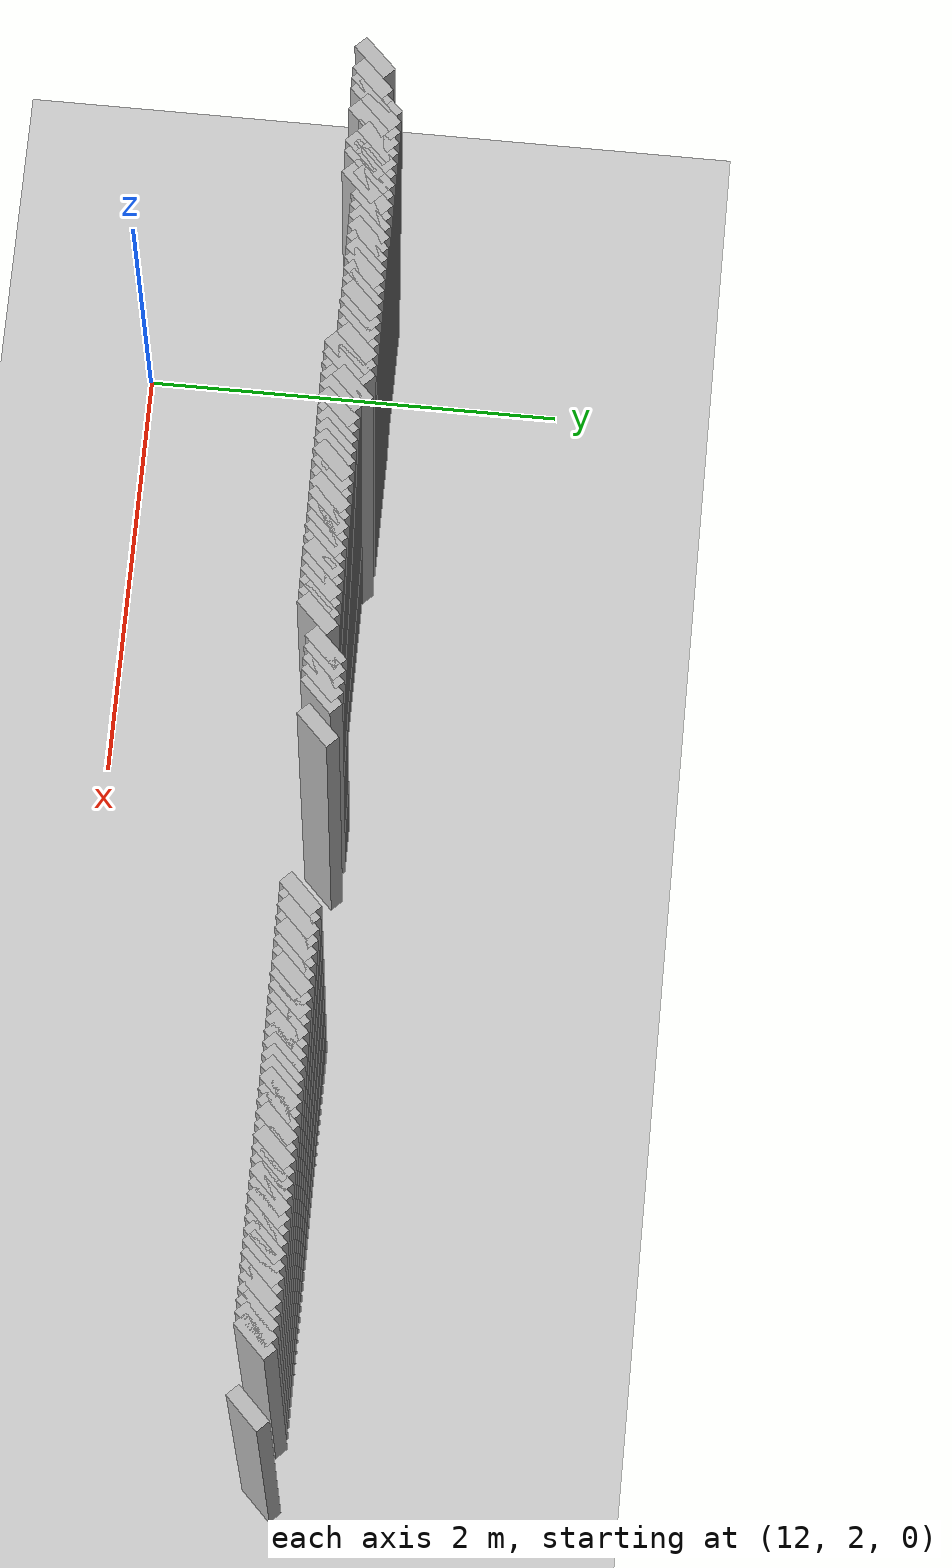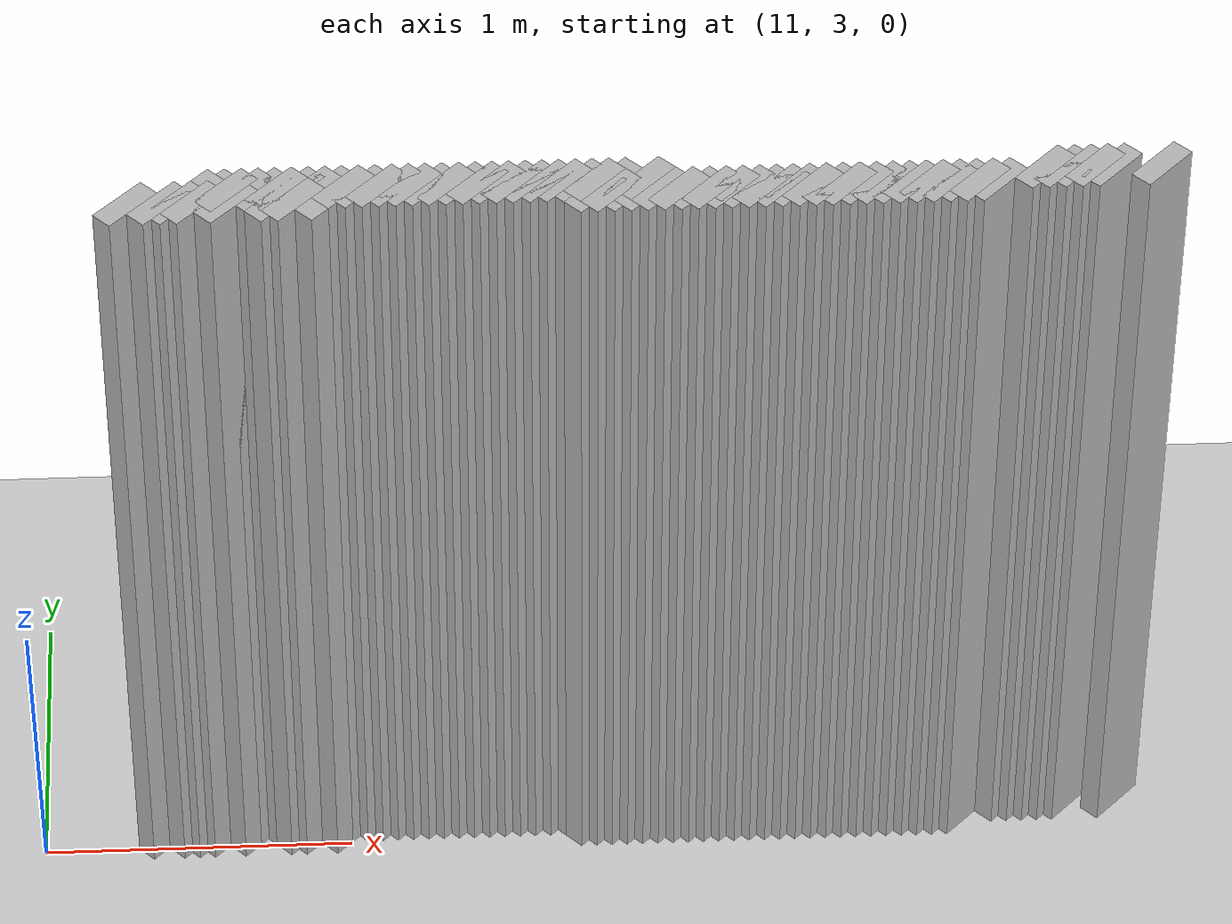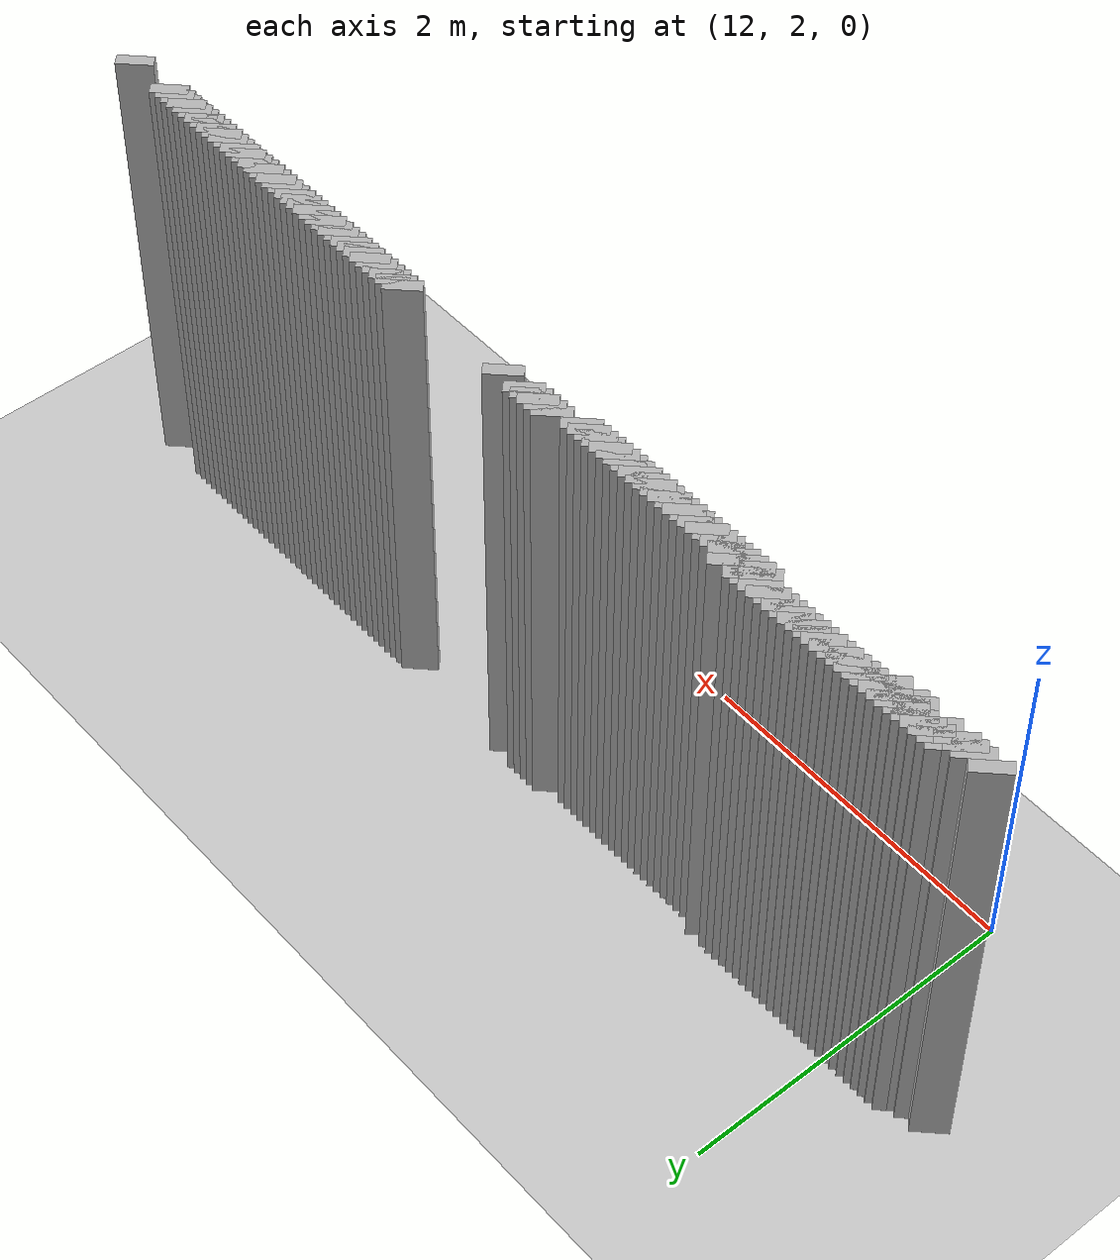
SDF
<sdf version="1.5">
 <world name="default">
  <include><uri>model://ground_plane</uri></include>
  <include><uri>model://sun</uri></include>
  <model name="grey_wall_3712">
   <static>1</static>
   <link name="link">
    <pose>11.600000000000001 3.1  1.4 0 0 -0.7853981633974394</pose>
    <collision name="collision">
     <geometry><box><size>0.07071067811865513 .2  2.8</size></box></geometry>
    </collision>
    <visual name="visual">
     <cast_shadows>0</cast_shadows>
     <geometry><box><size>0.07071067811865513 .2  2.8</size></box></geometry>
    </visual>
   </link>
  </model>
  <model name="grey_wall_3713">
   <static>1</static>
   <link name="link">
    <pose>11.65 3.1  1.4 0 0 -0.7853981633974394</pose>
    <collision name="collision">
     <geometry><box><size>0.07071067811865513 .2  2.8</size></box></geometry>
    </collision>
    <visual name="visual">
     <cast_shadows>0</cast_shadows>
     <geometry><box><size>0.07071067811865513 .2  2.8</size></box></geometry>
    </visual>
   </link>
  </model>
  <model name="grey_wall_3714">
   <static>1</static>
   <link name="link">
    <pose>11.700000000000001 3.1  1.4 0 0 -0.7853981633974394</pose>
    <collision name="collision">
     <geometry><box><size>0.07071067811865513 .2  2.8</size></box></geometry>
    </collision>
    <visual name="visual">
     <cast_shadows>0</cast_shadows>
     <geometry><box><size>0.07071067811865513 .2  2.8</size></box></geometry>
    </visual>
   </link>
  </model>
  <model name="grey_wall_3715">
   <static>1</static>
   <link name="link">
    <pose>11.75 3.1  1.4 0 0 -0.7853981633974394</pose>
    <collision name="collision">
     <geometry><box><size>0.07071067811865513 .2  2.8</size></box></geometry>
    </collision>
    <visual name="visual">
     <cast_shadows>0</cast_shadows>
     <geometry><box><size>0.07071067811865513 .2  2.8</size></box></geometry>
    </visual>
   </link>
  </model>
  <model name="grey_wall_3716">
   <static>1</static>
   <link name="link">
    <pose>11.8 3.1  1.4 0 0 -0.7853981633974394</pose>
    <collision name="collision">
     <geometry><box><size>0.07071067811865513 .2  2.8</size></box></geometry>
    </collision>
    <visual name="visual">
     <cast_shadows>0</cast_shadows>
     <geometry><box><size>0.07071067811865513 .2  2.8</size></box></geometry>
    </visual>
   </link>
  </model>
  <model name="grey_wall_3717">
   <static>1</static>
   <link name="link">
    <pose>11.850000000000001 3.1  1.4 0 0 -0.7853981633974394</pose>
    <collision name="collision">
     <geometry><box><size>0.07071067811865513 .2  2.8</size></box></geometry>
    </collision>
    <visual name="visual">
     <cast_shadows>0</cast_shadows>
     <geometry><box><size>0.07071067811865513 .2  2.8</size></box></geometry>
    </visual>
   </link>
  </model>
  <model name="grey_wall_3718">
   <static>1</static>
   <link name="link">
    <pose>11.9 3.1  1.4 0 0 -0.7853981633974394</pose>
    <collision name="collision">
     <geometry><box><size>0.07071067811865513 .2  2.8</size></box></geometry>
    </collision>
    <visual name="visual">
     <cast_shadows>0</cast_shadows>
     <geometry><box><size>0.07071067811865513 .2  2.8</size></box></geometry>
    </visual>
   </link>
  </model>
  <model name="grey_wall_3719">
   <static>1</static>
   <link name="link">
    <pose>11.950000000000001 3.1  1.4 0 0 -0.7853981633974394</pose>
    <collision name="collision">
     <geometry><box><size>0.07071067811865513 .2  2.8</size></box></geometry>
    </collision>
    <visual name="visual">
     <cast_shadows>0</cast_shadows>
     <geometry><box><size>0.07071067811865513 .2  2.8</size></box></geometry>
    </visual>
   </link>
  </model>
  <model name="grey_wall_3720">
   <static>1</static>
   <link name="link">
    <pose>12.0 3.1  1.4 0 0 -0.7853981633974394</pose>
    <collision name="collision">
     <geometry><box><size>0.07071067811865513 .2  2.8</size></box></geometry>
    </collision>
    <visual name="visual">
     <cast_shadows>0</cast_shadows>
     <geometry><box><size>0.07071067811865513 .2  2.8</size></box></geometry>
    </visual>
   </link>
  </model>
  <model name="grey_wall_3721">
   <static>1</static>
   <link name="link">
    <pose>12.05 3.1  1.4 0 0 -0.7853981633974394</pose>
    <collision name="collision">
     <geometry><box><size>0.07071067811865513 .2  2.8</size></box></geometry>
    </collision>
    <visual name="visual">
     <cast_shadows>0</cast_shadows>
     <geometry><box><size>0.07071067811865513 .2  2.8</size></box></geometry>
    </visual>
   </link>
  </model>
  <model name="grey_wall_3722">
   <static>1</static>
   <link name="link">
    <pose>12.100000000000001 3.1  1.4 0 0 -0.7853981633974394</pose>
    <collision name="collision">
     <geometry><box><size>0.07071067811865513 .2  2.8</size></box></geometry>
    </collision>
    <visual name="visual">
     <cast_shadows>0</cast_shadows>
     <geometry><box><size>0.07071067811865513 .2  2.8</size></box></geometry>
    </visual>
   </link>
  </model>
  <model name="grey_wall_3723">
   <static>1</static>
   <link name="link">
    <pose>12.15 3.1  1.4 0 0 -0.7853981633974394</pose>
    <collision name="collision">
     <geometry><box><size>0.07071067811865513 .2  2.8</size></box></geometry>
    </collision>
    <visual name="visual">
     <cast_shadows>0</cast_shadows>
     <geometry><box><size>0.07071067811865513 .2  2.8</size></box></geometry>
    </visual>
   </link>
  </model>
  <model name="grey_wall_3724">
   <static>1</static>
   <link name="link">
    <pose>12.200000000000001 3.1  1.4 0 0 -0.7853981633974394</pose>
    <collision name="collision">
     <geometry><box><size>0.07071067811865513 .2  2.8</size></box></geometry>
    </collision>
    <visual name="visual">
     <cast_shadows>0</cast_shadows>
     <geometry><box><size>0.07071067811865513 .2  2.8</size></box></geometry>
    </visual>
   </link>
  </model>
  <model name="grey_wall_3725">
   <static>1</static>
   <link name="link">
    <pose>12.25 3.1  1.4 0 0 -0.7853981633974394</pose>
    <collision name="collision">
     <geometry><box><size>0.07071067811865513 .2  2.8</size></box></geometry>
    </collision>
    <visual name="visual">
     <cast_shadows>0</cast_shadows>
     <geometry><box><size>0.07071067811865513 .2  2.8</size></box></geometry>
    </visual>
   </link>
  </model>
  <model name="grey_wall_3726">
   <static>1</static>
   <link name="link">
    <pose>12.3 3.1  1.4 0 0 -0.7853981633974394</pose>
    <collision name="collision">
     <geometry><box><size>0.07071067811865513 .2  2.8</size></box></geometry>
    </collision>
    <visual name="visual">
     <cast_shadows>0</cast_shadows>
     <geometry><box><size>0.07071067811865513 .2  2.8</size></box></geometry>
    </visual>
   </link>
  </model>
  <model name="grey_wall_3727">
   <static>1</static>
   <link name="link">
    <pose>12.350000000000001 3.1  1.4 0 0 -0.7853981633974394</pose>
    <collision name="collision">
     <geometry><box><size>0.07071067811865513 .2  2.8</size></box></geometry>
    </collision>
    <visual name="visual">
     <cast_shadows>0</cast_shadows>
     <geometry><box><size>0.07071067811865513 .2  2.8</size></box></geometry>
    </visual>
   </link>
  </model>
  <model name="grey_wall_3728">
   <static>1</static>
   <link name="link">
    <pose>12.4 3.1  1.4 0 0 -0.7853981633974394</pose>
    <collision name="collision">
     <geometry><box><size>0.07071067811865513 .2  2.8</size></box></geometry>
    </collision>
    <visual name="visual">
     <cast_shadows>0</cast_shadows>
     <geometry><box><size>0.07071067811865513 .2  2.8</size></box></geometry>
    </visual>
   </link>
  </model>
  <model name="grey_wall_3729">
   <static>1</static>
   <link name="link">
    <pose>12.450000000000001 3.1  1.4 0 0 -0.7853981633974394</pose>
    <collision name="collision">
     <geometry><box><size>0.07071067811865513 .2  2.8</size></box></geometry>
    </collision>
    <visual name="visual">
     <cast_shadows>0</cast_shadows>
     <geometry><box><size>0.07071067811865513 .2  2.8</size></box></geometry>
    </visual>
   </link>
  </model>
  <model name="grey_wall_3730">
   <static>1</static>
   <link name="link">
    <pose>12.5 3.1  1.4 0 0 -0.7853981633974394</pose>
    <collision name="collision">
     <geometry><box><size>0.07071067811865513 .2  2.8</size></box></geometry>
    </collision>
    <visual name="visual">
     <cast_shadows>0</cast_shadows>
     <geometry><box><size>0.07071067811865513 .2  2.8</size></box></geometry>
    </visual>
   </link>
  </model>
  <model name="grey_wall_3731">
   <static>1</static>
   <link name="link">
    <pose>12.55 3.1  1.4 0 0 -0.7853981633974394</pose>
    <collision name="collision">
     <geometry><box><size>0.07071067811865513 .2  2.8</size></box></geometry>
    </collision>
    <visual name="visual">
     <cast_shadows>0</cast_shadows>
     <geometry><box><size>0.07071067811865513 .2  2.8</size></box></geometry>
    </visual>
   </link>
  </model>
  <model name="grey_wall_3732">
   <static>1</static>
   <link name="link">
    <pose>12.600000000000001 3.1  1.4 0 0 -0.7853981633974394</pose>
    <collision name="collision">
     <geometry><box><size>0.07071067811865513 .2  2.8</size></box></geometry>
    </collision>
    <visual name="visual">
     <cast_shadows>0</cast_shadows>
     <geometry><box><size>0.07071067811865513 .2  2.8</size></box></geometry>
    </visual>
   </link>
  </model>
  <model name="grey_wall_3733">
   <static>1</static>
   <link name="link">
    <pose>12.65 3.1  1.4 0 0 -0.7853981633974394</pose>
    <collision name="collision">
     <geometry><box><size>0.07071067811865513 .2  2.8</size></box></geometry>
    </collision>
    <visual name="visual">
     <cast_shadows>0</cast_shadows>
     <geometry><box><size>0.07071067811865513 .2  2.8</size></box></geometry>
    </visual>
   </link>
  </model>
  <model name="grey_wall_3734">
   <static>1</static>
   <link name="link">
    <pose>12.700000000000001 3.1  1.4 0 0 -0.7853981633974394</pose>
    <collision name="collision">
     <geometry><box><size>0.07071067811865513 .2  2.8</size></box></geometry>
    </collision>
    <visual name="visual">
     <cast_shadows>0</cast_shadows>
     <geometry><box><size>0.07071067811865513 .2  2.8</size></box></geometry>
    </visual>
   </link>
  </model>
  <model name="grey_wall_3735">
   <static>1</static>
   <link name="link">
    <pose>12.75 3.1  1.4 0 0 -0.7853981633974394</pose>
    <collision name="collision">
     <geometry><box><size>0.07071067811865513 .2  2.8</size></box></geometry>
    </collision>
    <visual name="visual">
     <cast_shadows>0</cast_shadows>
     <geometry><box><size>0.07071067811865513 .2  2.8</size></box></geometry>
    </visual>
   </link>
  </model>
  <model name="grey_wall_3736">
   <static>1</static>
   <link name="link">
    <pose>12.8 3.1  1.4 0 0 -0.7853981633974394</pose>
    <collision name="collision">
     <geometry><box><size>0.07071067811865513 .2  2.8</size></box></geometry>
    </collision>
    <visual name="visual">
     <cast_shadows>0</cast_shadows>
     <geometry><box><size>0.07071067811865513 .2  2.8</size></box></geometry>
    </visual>
   </link>
  </model>
  <model name="grey_wall_3737">
   <static>1</static>
   <link name="link">
    <pose>12.850000000000001 3.1  1.4 0 0 -0.7853981633974394</pose>
    <collision name="collision">
     <geometry><box><size>0.07071067811865513 .2  2.8</size></box></geometry>
    </collision>
    <visual name="visual">
     <cast_shadows>0</cast_shadows>
     <geometry><box><size>0.07071067811865513 .2  2.8</size></box></geometry>
    </visual>
   </link>
  </model>
  <model name="grey_wall_3738">
   <static>1</static>
   <link name="link">
    <pose>12.950000000000001 3.1  1.4 0 0 -0.7853981633974394</pose>
    <collision name="collision">
     <geometry><box><size>0.07071067811865513 .2  2.8</size></box></geometry>
    </collision>
    <visual name="visual">
     <cast_shadows>0</cast_shadows>
     <geometry><box><size>0.07071067811865513 .2  2.8</size></box></geometry>
    </visual>
   </link>
  </model>
  <model name="grey_wall_3739">
   <static>1</static>
   <link name="link">
    <pose>14.15 3.1  1.4 0 0 -0.7853981633974394</pose>
    <collision name="collision">
     <geometry><box><size>0.07071067811865513 .2  2.8</size></box></geometry>
    </collision>
    <visual name="visual">
     <cast_shadows>0</cast_shadows>
     <geometry><box><size>0.07071067811865513 .2  2.8</size></box></geometry>
    </visual>
   </link>
  </model>
  <model name="grey_wall_3740">
   <static>1</static>
   <link name="link">
    <pose>14.200000000000001 3.1  1.4 0 0 -0.7853981633974394</pose>
    <collision name="collision">
     <geometry><box><size>0.07071067811865513 .2  2.8</size></box></geometry>
    </collision>
    <visual name="visual">
     <cast_shadows>0</cast_shadows>
     <geometry><box><size>0.07071067811865513 .2  2.8</size></box></geometry>
    </visual>
   </link>
  </model>
  <model name="grey_wall_3741">
   <static>1</static>
   <link name="link">
    <pose>14.25 3.1  1.4 0 0 -0.7853981633974394</pose>
    <collision name="collision">
     <geometry><box><size>0.07071067811865513 .2  2.8</size></box></geometry>
    </collision>
    <visual name="visual">
     <cast_shadows>0</cast_shadows>
     <geometry><box><size>0.07071067811865513 .2  2.8</size></box></geometry>
    </visual>
   </link>
  </model>
  <model name="grey_wall_3742">
   <static>1</static>
   <link name="link">
    <pose>14.3 3.1  1.4 0 0 -0.7853981633974394</pose>
    <collision name="collision">
     <geometry><box><size>0.07071067811865513 .2  2.8</size></box></geometry>
    </collision>
    <visual name="visual">
     <cast_shadows>0</cast_shadows>
     <geometry><box><size>0.07071067811865513 .2  2.8</size></box></geometry>
    </visual>
   </link>
  </model>
  <model name="grey_wall_3743">
   <static>1</static>
   <link name="link">
    <pose>14.350000000000001 3.1  1.4 0 0 -0.7853981633974394</pose>
    <collision name="collision">
     <geometry><box><size>0.07071067811865513 .2  2.8</size></box></geometry>
    </collision>
    <visual name="visual">
     <cast_shadows>0</cast_shadows>
     <geometry><box><size>0.07071067811865513 .2  2.8</size></box></geometry>
    </visual>
   </link>
  </model>
  <model name="grey_wall_3744">
   <static>1</static>
   <link name="link">
    <pose>14.5 3.1  1.4 0 0 -0.7853981633974394</pose>
    <collision name="collision">
     <geometry><box><size>0.07071067811865513 .2  2.8</size></box></geometry>
    </collision>
    <visual name="visual">
     <cast_shadows>0</cast_shadows>
     <geometry><box><size>0.07071067811865513 .2  2.8</size></box></geometry>
    </visual>
   </link>
  </model>
  <model name="grey_wall_3745">
   <static>1</static>
   <link name="link">
    <pose>15.25 3.1  1.4 0 0 -0.7853981633974394</pose>
    <collision name="collision">
     <geometry><box><size>0.07071067811865513 .2  2.8</size></box></geometry>
    </collision>
    <visual name="visual">
     <cast_shadows>0</cast_shadows>
     <geometry><box><size>0.07071067811865513 .2  2.8</size></box></geometry>
    </visual>
   </link>
  </model>
  <model name="grey_wall_3746">
   <static>1</static>
   <link name="link">
    <pose>15.3 3.1  1.4 0 0 -0.7853981633974394</pose>
    <collision name="collision">
     <geometry><box><size>0.07071067811865513 .2  2.8</size></box></geometry>
    </collision>
    <visual name="visual">
     <cast_shadows>0</cast_shadows>
     <geometry><box><size>0.07071067811865513 .2  2.8</size></box></geometry>
    </visual>
   </link>
  </model>
  <model name="grey_wall_3747">
   <static>1</static>
   <link name="link">
    <pose>15.350000000000001 3.1  1.4 0 0 -0.7853981633974394</pose>
    <collision name="collision">
     <geometry><box><size>0.07071067811865513 .2  2.8</size></box></geometry>
    </collision>
    <visual name="visual">
     <cast_shadows>0</cast_shadows>
     <geometry><box><size>0.07071067811865513 .2  2.8</size></box></geometry>
    </visual>
   </link>
  </model>
  <model name="grey_wall_3748">
   <static>1</static>
   <link name="link">
    <pose>15.4 3.1  1.4 0 0 -0.7853981633974394</pose>
    <collision name="collision">
     <geometry><box><size>0.07071067811865513 .2  2.8</size></box></geometry>
    </collision>
    <visual name="visual">
     <cast_shadows>0</cast_shadows>
     <geometry><box><size>0.07071067811865513 .2  2.8</size></box></geometry>
    </visual>
   </link>
  </model>
  <model name="grey_wall_3749">
   <static>1</static>
   <link name="link">
    <pose>15.450000000000001 3.1  1.4 0 0 -0.7853981633974394</pose>
    <collision name="collision">
     <geometry><box><size>0.07071067811865513 .2  2.8</size></box></geometry>
    </collision>
    <visual name="visual">
     <cast_shadows>0</cast_shadows>
     <geometry><box><size>0.07071067811865513 .2  2.8</size></box></geometry>
    </visual>
   </link>
  </model>
  <model name="grey_wall_3750">
   <static>1</static>
   <link name="link">
    <pose>15.5 3.1  1.4 0 0 -0.7853981633974394</pose>
    <collision name="collision">
     <geometry><box><size>0.07071067811865513 .2  2.8</size></box></geometry>
    </collision>
    <visual name="visual">
     <cast_shadows>0</cast_shadows>
     <geometry><box><size>0.07071067811865513 .2  2.8</size></box></geometry>
    </visual>
   </link>
  </model>
  <model name="grey_wall_3751">
   <static>1</static>
   <link name="link">
    <pose>15.55 3.1  1.4 0 0 -0.7853981633974394</pose>
    <collision name="collision">
     <geometry><box><size>0.07071067811865513 .2  2.8</size></box></geometry>
    </collision>
    <visual name="visual">
     <cast_shadows>0</cast_shadows>
     <geometry><box><size>0.07071067811865513 .2  2.8</size></box></geometry>
    </visual>
   </link>
  </model>
  <model name="grey_wall_3752">
   <static>1</static>
   <link name="link">
    <pose>15.600000000000001 3.1  1.4 0 0 -0.7853981633974394</pose>
    <collision name="collision">
     <geometry><box><size>0.07071067811865513 .2  2.8</size></box></geometry>
    </collision>
    <visual name="visual">
     <cast_shadows>0</cast_shadows>
     <geometry><box><size>0.07071067811865513 .2  2.8</size></box></geometry>
    </visual>
   </link>
  </model>
  <model name="grey_wall_3753">
   <static>1</static>
   <link name="link">
    <pose>15.65 3.1  1.4 0 0 -0.7853981633974394</pose>
    <collision name="collision">
     <geometry><box><size>0.07071067811865513 .2  2.8</size></box></geometry>
    </collision>
    <visual name="visual">
     <cast_shadows>0</cast_shadows>
     <geometry><box><size>0.07071067811865513 .2  2.8</size></box></geometry>
    </visual>
   </link>
  </model>
  <model name="grey_wall_3754">
   <static>1</static>
   <link name="link">
    <pose>15.700000000000001 3.1  1.4 0 0 -0.7853981633974394</pose>
    <collision name="collision">
     <geometry><box><size>0.07071067811865513 .2  2.8</size></box></geometry>
    </collision>
    <visual name="visual">
     <cast_shadows>0</cast_shadows>
     <geometry><box><size>0.07071067811865513 .2  2.8</size></box></geometry>
    </visual>
   </link>
  </model>
  <model name="grey_wall_3755">
   <static>1</static>
   <link name="link">
    <pose>15.75 3.1  1.4 0 0 -0.7853981633974394</pose>
    <collision name="collision">
     <geometry><box><size>0.07071067811865513 .2  2.8</size></box></geometry>
    </collision>
    <visual name="visual">
     <cast_shadows>0</cast_shadows>
     <geometry><box><size>0.07071067811865513 .2  2.8</size></box></geometry>
    </visual>
   </link>
  </model>
  <model name="grey_wall_3756">
   <static>1</static>
   <link name="link">
    <pose>15.8 3.1  1.4 0 0 -0.7853981633974394</pose>
    <collision name="collision">
     <geometry><box><size>0.07071067811865513 .2  2.8</size></box></geometry>
    </collision>
    <visual name="visual">
     <cast_shadows>0</cast_shadows>
     <geometry><box><size>0.07071067811865513 .2  2.8</size></box></geometry>
    </visual>
   </link>
  </model>
  <model name="grey_wall_3757">
   <static>1</static>
   <link name="link">
    <pose>15.850000000000001 3.1  1.4 0 0 -0.7853981633974394</pose>
    <collision name="collision">
     <geometry><box><size>0.07071067811865513 .2  2.8</size></box></geometry>
    </collision>
    <visual name="visual">
     <cast_shadows>0</cast_shadows>
     <geometry><box><size>0.07071067811865513 .2  2.8</size></box></geometry>
    </visual>
   </link>
  </model>
  <model name="grey_wall_3758">
   <static>1</static>
   <link name="link">
    <pose>15.9 3.1  1.4 0 0 -0.7853981633974394</pose>
    <collision name="collision">
     <geometry><box><size>0.07071067811865513 .2  2.8</size></box></geometry>
    </collision>
    <visual name="visual">
     <cast_shadows>0</cast_shadows>
     <geometry><box><size>0.07071067811865513 .2  2.8</size></box></geometry>
    </visual>
   </link>
  </model>
  <model name="grey_wall_3759">
   <static>1</static>
   <link name="link">
    <pose>15.950000000000001 3.1  1.4 0 0 -0.7853981633974394</pose>
    <collision name="collision">
     <geometry><box><size>0.07071067811865513 .2  2.8</size></box></geometry>
    </collision>
    <visual name="visual">
     <cast_shadows>0</cast_shadows>
     <geometry><box><size>0.07071067811865513 .2  2.8</size></box></geometry>
    </visual>
   </link>
  </model>
  <model name="grey_wall_3760">
   <static>1</static>
   <link name="link">
    <pose>16.0 3.1  1.4 0 0 -0.7853981633974572</pose>
    <collision name="collision">
     <geometry><box><size>0.07071067811865388 .2  2.8</size></box></geometry>
    </collision>
    <visual name="visual">
     <cast_shadows>0</cast_shadows>
     <geometry><box><size>0.07071067811865388 .2  2.8</size></box></geometry>
    </visual>
   </link>
  </model>
  <model name="grey_wall_3761">
   <static>1</static>
   <link name="link">
    <pose>16.05 3.1  1.4 0 0 -0.7853981633974749</pose>
    <collision name="collision">
     <geometry><box><size>0.07071067811865261 .2  2.8</size></box></geometry>
    </collision>
    <visual name="visual">
     <cast_shadows>0</cast_shadows>
     <geometry><box><size>0.07071067811865261 .2  2.8</size></box></geometry>
    </visual>
   </link>
  </model>
  <model name="grey_wall_3762">
   <static>1</static>
   <link name="link">
    <pose>16.1 3.1  1.4 0 0 -0.7853981633974749</pose>
    <collision name="collision">
     <geometry><box><size>0.07071067811865261 .2  2.8</size></box></geometry>
    </collision>
    <visual name="visual">
     <cast_shadows>0</cast_shadows>
     <geometry><box><size>0.07071067811865261 .2  2.8</size></box></geometry>
    </visual>
   </link>
  </model>
  <model name="grey_wall_3763">
   <static>1</static>
   <link name="link">
    <pose>16.150000000000002 3.1  1.4 0 0 -0.7853981633974749</pose>
    <collision name="collision">
     <geometry><box><size>0.07071067811865261 .2  2.8</size></box></geometry>
    </collision>
    <visual name="visual">
     <cast_shadows>0</cast_shadows>
     <geometry><box><size>0.07071067811865261 .2  2.8</size></box></geometry>
    </visual>
   </link>
  </model>
  <model name="grey_wall_3764">
   <static>1</static>
   <link name="link">
    <pose>16.2 3.1  1.4 0 0 -0.7853981633974749</pose>
    <collision name="collision">
     <geometry><box><size>0.07071067811865261 .2  2.8</size></box></geometry>
    </collision>
    <visual name="visual">
     <cast_shadows>0</cast_shadows>
     <geometry><box><size>0.07071067811865261 .2  2.8</size></box></geometry>
    </visual>
   </link>
  </model>
  <model name="grey_wall_3765">
   <static>1</static>
   <link name="link">
    <pose>16.25 3.1  1.4 0 0 -0.7853981633974749</pose>
    <collision name="collision">
     <geometry><box><size>0.07071067811865261 .2  2.8</size></box></geometry>
    </collision>
    <visual name="visual">
     <cast_shadows>0</cast_shadows>
     <geometry><box><size>0.07071067811865261 .2  2.8</size></box></geometry>
    </visual>
   </link>
  </model>
  <model name="grey_wall_3766">
   <static>1</static>
   <link name="link">
    <pose>16.3 3.1  1.4 0 0 -0.7853981633974749</pose>
    <collision name="collision">
     <geometry><box><size>0.07071067811865261 .2  2.8</size></box></geometry>
    </collision>
    <visual name="visual">
     <cast_shadows>0</cast_shadows>
     <geometry><box><size>0.07071067811865261 .2  2.8</size></box></geometry>
    </visual>
   </link>
  </model>
  <model name="grey_wall_3767">
   <static>1</static>
   <link name="link">
    <pose>16.35 3.1  1.4 0 0 -0.7853981633974749</pose>
    <collision name="collision">
     <geometry><box><size>0.07071067811865261 .2  2.8</size></box></geometry>
    </collision>
    <visual name="visual">
     <cast_shadows>0</cast_shadows>
     <geometry><box><size>0.07071067811865261 .2  2.8</size></box></geometry>
    </visual>
   </link>
  </model>
  <model name="grey_wall_3768">
   <static>1</static>
   <link name="link">
    <pose>16.400000000000002 3.1  1.4 0 0 -0.7853981633974749</pose>
    <collision name="collision">
     <geometry><box><size>0.07071067811865261 .2  2.8</size></box></geometry>
    </collision>
    <visual name="visual">
     <cast_shadows>0</cast_shadows>
     <geometry><box><size>0.07071067811865261 .2  2.8</size></box></geometry>
    </visual>
   </link>
  </model>
  <model name="grey_wall_3769">
   <static>1</static>
   <link name="link">
    <pose>16.45 3.1  1.4 0 0 -0.7853981633974749</pose>
    <collision name="collision">
     <geometry><box><size>0.07071067811865261 .2  2.8</size></box></geometry>
    </collision>
    <visual name="visual">
     <cast_shadows>0</cast_shadows>
     <geometry><box><size>0.07071067811865261 .2  2.8</size></box></geometry>
    </visual>
   </link>
  </model>
  <model name="grey_wall_3770">
   <static>1</static>
   <link name="link">
    <pose>16.5 3.1  1.4 0 0 -0.7853981633974749</pose>
    <collision name="collision">
     <geometry><box><size>0.07071067811865261 .2  2.8</size></box></geometry>
    </collision>
    <visual name="visual">
     <cast_shadows>0</cast_shadows>
     <geometry><box><size>0.07071067811865261 .2  2.8</size></box></geometry>
    </visual>
   </link>
  </model>
  <model name="grey_wall_3771">
   <static>1</static>
   <link name="link">
    <pose>16.55 3.1  1.4 0 0 -0.7853981633974749</pose>
    <collision name="collision">
     <geometry><box><size>0.07071067811865261 .2  2.8</size></box></geometry>
    </collision>
    <visual name="visual">
     <cast_shadows>0</cast_shadows>
     <geometry><box><size>0.07071067811865261 .2  2.8</size></box></geometry>
    </visual>
   </link>
  </model>
  <model name="grey_wall_3772">
   <static>1</static>
   <link name="link">
    <pose>16.6 3.1  1.4 0 0 -0.7853981633974749</pose>
    <collision name="collision">
     <geometry><box><size>0.07071067811865261 .2  2.8</size></box></geometry>
    </collision>
    <visual name="visual">
     <cast_shadows>0</cast_shadows>
     <geometry><box><size>0.07071067811865261 .2  2.8</size></box></geometry>
    </visual>
   </link>
  </model>
  <model name="grey_wall_3773">
   <static>1</static>
   <link name="link">
    <pose>16.650000000000002 3.1  1.4 0 0 -0.7853981633974749</pose>
    <collision name="collision">
     <geometry><box><size>0.07071067811865261 .2  2.8</size></box></geometry>
    </collision>
    <visual name="visual">
     <cast_shadows>0</cast_shadows>
     <geometry><box><size>0.07071067811865261 .2  2.8</size></box></geometry>
    </visual>
   </link>
  </model>
  <model name="grey_wall_3774">
   <static>1</static>
   <link name="link">
    <pose>16.7 3.1  1.4 0 0 -0.7853981633974749</pose>
    <collision name="collision">
     <geometry><box><size>0.07071067811865261 .2  2.8</size></box></geometry>
    </collision>
    <visual name="visual">
     <cast_shadows>0</cast_shadows>
     <geometry><box><size>0.07071067811865261 .2  2.8</size></box></geometry>
    </visual>
   </link>
  </model>
  <model name="grey_wall_3775">
   <static>1</static>
   <link name="link">
    <pose>16.75 3.1  1.4 0 0 -0.7853981633974749</pose>
    <collision name="collision">
     <geometry><box><size>0.07071067811865261 .2  2.8</size></box></geometry>
    </collision>
    <visual name="visual">
     <cast_shadows>0</cast_shadows>
     <geometry><box><size>0.07071067811865261 .2  2.8</size></box></geometry>
    </visual>
   </link>
  </model>
  <model name="grey_wall_3776">
   <static>1</static>
   <link name="link">
    <pose>16.8 3.1  1.4 0 0 -0.7853981633974749</pose>
    <collision name="collision">
     <geometry><box><size>0.07071067811865261 .2  2.8</size></box></geometry>
    </collision>
    <visual name="visual">
     <cast_shadows>0</cast_shadows>
     <geometry><box><size>0.07071067811865261 .2  2.8</size></box></geometry>
    </visual>
   </link>
  </model>
  <model name="grey_wall_3777">
   <static>1</static>
   <link name="link">
    <pose>16.85 3.1  1.4 0 0 -0.7853981633974749</pose>
    <collision name="collision">
     <geometry><box><size>0.07071067811865261 .2  2.8</size></box></geometry>
    </collision>
    <visual name="visual">
     <cast_shadows>0</cast_shadows>
     <geometry><box><size>0.07071067811865261 .2  2.8</size></box></geometry>
    </visual>
   </link>
  </model>
  <model name="grey_wall_3778">
   <static>1</static>
   <link name="link">
    <pose>16.900000000000002 3.1  1.4 0 0 -0.7853981633974749</pose>
    <collision name="collision">
     <geometry><box><size>0.07071067811865261 .2  2.8</size></box></geometry>
    </collision>
    <visual name="visual">
     <cast_shadows>0</cast_shadows>
     <geometry><box><size>0.07071067811865261 .2  2.8</size></box></geometry>
    </visual>
   </link>
  </model>
  <model name="grey_wall_3779">
   <static>1</static>
   <link name="link">
    <pose>16.95 3.1  1.4 0 0 -0.7853981633974749</pose>
    <collision name="collision">
     <geometry><box><size>0.07071067811865261 .2  2.8</size></box></geometry>
    </collision>
    <visual name="visual">
     <cast_shadows>0</cast_shadows>
     <geometry><box><size>0.07071067811865261 .2  2.8</size></box></geometry>
    </visual>
   </link>
  </model>
  <model name="grey_wall_3780">
   <static>1</static>
   <link name="link">
    <pose>17.0 3.1  1.4 0 0 -0.7853981633974749</pose>
    <collision name="collision">
     <geometry><box><size>0.07071067811865261 .2  2.8</size></box></geometry>
    </collision>
    <visual name="visual">
     <cast_shadows>0</cast_shadows>
     <geometry><box><size>0.07071067811865261 .2  2.8</size></box></geometry>
    </visual>
   </link>
  </model>
  <model name="grey_wall_3781">
   <static>1</static>
   <link name="link">
    <pose>17.05 3.1  1.4 0 0 -0.7853981633974749</pose>
    <collision name="collision">
     <geometry><box><size>0.07071067811865261 .2  2.8</size></box></geometry>
    </collision>
    <visual name="visual">
     <cast_shadows>0</cast_shadows>
     <geometry><box><size>0.07071067811865261 .2  2.8</size></box></geometry>
    </visual>
   </link>
  </model>
  <model name="grey_wall_3782">
   <static>1</static>
   <link name="link">
    <pose>17.1 3.1  1.4 0 0 -0.7853981633974749</pose>
    <collision name="collision">
     <geometry><box><size>0.07071067811865261 .2  2.8</size></box></geometry>
    </collision>
    <visual name="visual">
     <cast_shadows>0</cast_shadows>
     <geometry><box><size>0.07071067811865261 .2  2.8</size></box></geometry>
    </visual>
   </link>
  </model>
  <model name="grey_wall_3783">
   <static>1</static>
   <link name="link">
    <pose>17.150000000000002 3.1  1.4 0 0 -0.7853981633974749</pose>
    <collision name="collision">
     <geometry><box><size>0.07071067811865261 .2  2.8</size></box></geometry>
    </collision>
    <visual name="visual">
     <cast_shadows>0</cast_shadows>
     <geometry><box><size>0.07071067811865261 .2  2.8</size></box></geometry>
    </visual>
   </link>
  </model>
  <model name="grey_wall_3784">
   <static>1</static>
   <link name="link">
    <pose>17.45 3.1  1.4 0 0 -0.7853981633974749</pose>
    <collision name="collision">
     <geometry><box><size>0.07071067811865261 .2  2.8</size></box></geometry>
    </collision>
    <visual name="visual">
     <cast_shadows>0</cast_shadows>
     <geometry><box><size>0.07071067811865261 .2  2.8</size></box></geometry>
    </visual>
   </link>
  </model>
  <model name="grey_wall_3785">
   <static>1</static>
   <link name="link">
    <pose>11.4 3.0500000000000003  1.4 0 0 -0.7853981633974394</pose>
    <collision name="collision">
     <geometry><box><size>0.07071067811865513 .2  2.8</size></box></geometry>
    </collision>
    <visual name="visual">
     <cast_shadows>0</cast_shadows>
     <geometry><box><size>0.07071067811865513 .2  2.8</size></box></geometry>
    </visual>
   </link>
  </model>
  <model name="grey_wall_3786">
   <static>1</static>
   <link name="link">
    <pose>11.5 3.0500000000000003  1.4 0 0 -0.7853981633974394</pose>
    <collision name="collision">
     <geometry><box><size>0.07071067811865513 .2  2.8</size></box></geometry>
    </collision>
    <visual name="visual">
     <cast_shadows>0</cast_shadows>
     <geometry><box><size>0.07071067811865513 .2  2.8</size></box></geometry>
    </visual>
   </link>
  </model>
  <model name="grey_wall_3787">
   <static>1</static>
   <link name="link">
    <pose>11.55 3.0500000000000003  1.4 0 0 -0.7853981633974394</pose>
    <collision name="collision">
     <geometry><box><size>0.07071067811865513 .2  2.8</size></box></geometry>
    </collision>
    <visual name="visual">
     <cast_shadows>0</cast_shadows>
     <geometry><box><size>0.07071067811865513 .2  2.8</size></box></geometry>
    </visual>
   </link>
  </model>
  <model name="grey_wall_3788">
   <static>1</static>
   <link name="link">
    <pose>11.600000000000001 3.0500000000000003  1.4 0 0 -0.7853981633974394</pose>
    <collision name="collision">
     <geometry><box><size>0.07071067811865513 .2  2.8</size></box></geometry>
    </collision>
    <visual name="visual">
     <cast_shadows>0</cast_shadows>
     <geometry><box><size>0.07071067811865513 .2  2.8</size></box></geometry>
    </visual>
   </link>
  </model>
  <model name="grey_wall_3789">
   <static>1</static>
   <link name="link">
    <pose>11.700000000000001 3.0500000000000003  1.4 0 0 -0.7853981633974394</pose>
    <collision name="collision">
     <geometry><box><size>0.07071067811865513 .2  2.8</size></box></geometry>
    </collision>
    <visual name="visual">
     <cast_shadows>0</cast_shadows>
     <geometry><box><size>0.07071067811865513 .2  2.8</size></box></geometry>
    </visual>
   </link>
  </model>
  <model name="grey_wall_3790">
   <static>1</static>
   <link name="link">
    <pose>11.850000000000001 3.0500000000000003  1.4 0 0 -0.7853981633974394</pose>
    <collision name="collision">
     <geometry><box><size>0.07071067811865513 .2  2.8</size></box></geometry>
    </collision>
    <visual name="visual">
     <cast_shadows>0</cast_shadows>
     <geometry><box><size>0.07071067811865513 .2  2.8</size></box></geometry>
    </visual>
   </link>
  </model>
  <model name="grey_wall_3791">
   <static>1</static>
   <link name="link">
    <pose>11.9 3.0500000000000003  1.4 0 0 -0.7853981633974394</pose>
    <collision name="collision">
     <geometry><box><size>0.07071067811865513 .2  2.8</size></box></geometry>
    </collision>
    <visual name="visual">
     <cast_shadows>0</cast_shadows>
     <geometry><box><size>0.07071067811865513 .2  2.8</size></box></geometry>
    </visual>
   </link>
  </model>
  <model name="grey_wall_3792">
   <static>1</static>
   <link name="link">
    <pose>12.0 3.0500000000000003  1.4 0 0 -0.7853981633974394</pose>
    <collision name="collision">
     <geometry><box><size>0.07071067811865513 .2  2.8</size></box></geometry>
    </collision>
    <visual name="visual">
     <cast_shadows>0</cast_shadows>
     <geometry><box><size>0.07071067811865513 .2  2.8</size></box></geometry>
    </visual>
   </link>
  </model>
  <model name="grey_wall_3793">
   <static>1</static>
   <link name="link">
    <pose>12.8 3.0500000000000003  1.4 0 0 -0.7853981633974394</pose>
    <collision name="collision">
     <geometry><box><size>0.07071067811865513 .2  2.8</size></box></geometry>
    </collision>
    <visual name="visual">
     <cast_shadows>0</cast_shadows>
     <geometry><box><size>0.07071067811865513 .2  2.8</size></box></geometry>
    </visual>
   </link>
  </model>
  <model name="grey_wall_3794">
   <static>1</static>
   <link name="link">
    <pose>12.850000000000001 3.0500000000000003  1.4 0 0 -0.7853981633974394</pose>
    <collision name="collision">
     <geometry><box><size>0.07071067811865513 .2  2.8</size></box></geometry>
    </collision>
    <visual name="visual">
     <cast_shadows>0</cast_shadows>
     <geometry><box><size>0.07071067811865513 .2  2.8</size></box></geometry>
    </visual>
   </link>
  </model>
  <model name="grey_wall_3795">
   <static>1</static>
   <link name="link">
    <pose>12.9 3.0500000000000003  1.4 0 0 -0.7853981633974394</pose>
    <collision name="collision">
     <geometry><box><size>0.07071067811865513 .2  2.8</size></box></geometry>
    </collision>
    <visual name="visual">
     <cast_shadows>0</cast_shadows>
     <geometry><box><size>0.07071067811865513 .2  2.8</size></box></geometry>
    </visual>
   </link>
  </model>
  <model name="grey_wall_3796">
   <static>1</static>
   <link name="link">
    <pose>12.950000000000001 3.0500000000000003  1.4 0 0 -0.7853981633974394</pose>
    <collision name="collision">
     <geometry><box><size>0.07071067811865513 .2  2.8</size></box></geometry>
    </collision>
    <visual name="visual">
     <cast_shadows>0</cast_shadows>
     <geometry><box><size>0.07071067811865513 .2  2.8</size></box></geometry>
    </visual>
   </link>
  </model>
  <model name="grey_wall_3797">
   <static>1</static>
   <link name="link">
    <pose>13.0 3.0500000000000003  1.4 0 0 -0.7853981633974394</pose>
    <collision name="collision">
     <geometry><box><size>0.07071067811865513 .2  2.8</size></box></geometry>
    </collision>
    <visual name="visual">
     <cast_shadows>0</cast_shadows>
     <geometry><box><size>0.07071067811865513 .2  2.8</size></box></geometry>
    </visual>
   </link>
  </model>
  <model name="grey_wall_3798">
   <static>1</static>
   <link name="link">
    <pose>13.05 3.0500000000000003  1.4 0 0 -0.7853981633974394</pose>
    <collision name="collision">
     <geometry><box><size>0.07071067811865513 .2  2.8</size></box></geometry>
    </collision>
    <visual name="visual">
     <cast_shadows>0</cast_shadows>
     <geometry><box><size>0.07071067811865513 .2  2.8</size></box></geometry>
    </visual>
   </link>
  </model>
  <model name="grey_wall_3799">
   <static>1</static>
   <link name="link">
    <pose>13.100000000000001 3.0500000000000003  1.4 0 0 -0.7853981633974394</pose>
    <collision name="collision">
     <geometry><box><size>0.07071067811865513 .2  2.8</size></box></geometry>
    </collision>
    <visual name="visual">
     <cast_shadows>0</cast_shadows>
     <geometry><box><size>0.07071067811865513 .2  2.8</size></box></geometry>
    </visual>
   </link>
  </model>
  <model name="grey_wall_3800">
   <static>1</static>
   <link name="link">
    <pose>13.15 3.0500000000000003  1.4 0 0 -0.7853981633974394</pose>
    <collision name="collision">
     <geometry><box><size>0.07071067811865513 .2  2.8</size></box></geometry>
    </collision>
    <visual name="visual">
     <cast_shadows>0</cast_shadows>
     <geometry><box><size>0.07071067811865513 .2  2.8</size></box></geometry>
    </visual>
   </link>
  </model>
  <model name="grey_wall_3801">
   <static>1</static>
   <link name="link">
    <pose>13.200000000000001 3.0500000000000003  1.4 0 0 -0.7853981633974394</pose>
    <collision name="collision">
     <geometry><box><size>0.07071067811865513 .2  2.8</size></box></geometry>
    </collision>
    <visual name="visual">
     <cast_shadows>0</cast_shadows>
     <geometry><box><size>0.07071067811865513 .2  2.8</size></box></geometry>
    </visual>
   </link>
  </model>
  <model name="grey_wall_3802">
   <static>1</static>
   <link name="link">
    <pose>13.25 3.0500000000000003  1.4 0 0 -0.7853981633974394</pose>
    <collision name="collision">
     <geometry><box><size>0.07071067811865513 .2  2.8</size></box></geometry>
    </collision>
    <visual name="visual">
     <cast_shadows>0</cast_shadows>
     <geometry><box><size>0.07071067811865513 .2  2.8</size></box></geometry>
    </visual>
   </link>
  </model>
  <model name="grey_wall_3803">
   <static>1</static>
   <link name="link">
    <pose>13.3 3.0500000000000003  1.4 0 0 -0.7853981633974394</pose>
    <collision name="collision">
     <geometry><box><size>0.07071067811865513 .2  2.8</size></box></geometry>
    </collision>
    <visual name="visual">
     <cast_shadows>0</cast_shadows>
     <geometry><box><size>0.07071067811865513 .2  2.8</size></box></geometry>
    </visual>
   </link>
  </model>
  <model name="grey_wall_3804">
   <static>1</static>
   <link name="link">
    <pose>13.350000000000001 3.0500000000000003  1.4 0 0 -0.7853981633974394</pose>
    <collision name="collision">
     <geometry><box><size>0.07071067811865513 .2  2.8</size></box></geometry>
    </collision>
    <visual name="visual">
     <cast_shadows>0</cast_shadows>
     <geometry><box><size>0.07071067811865513 .2  2.8</size></box></geometry>
    </visual>
   </link>
  </model>
  <model name="grey_wall_3805">
   <static>1</static>
   <link name="link">
    <pose>13.4 3.0500000000000003  1.4 0 0 -0.7853981633974394</pose>
    <collision name="collision">
     <geometry><box><size>0.07071067811865513 .2  2.8</size></box></geometry>
    </collision>
    <visual name="visual">
     <cast_shadows>0</cast_shadows>
     <geometry><box><size>0.07071067811865513 .2  2.8</size></box></geometry>
    </visual>
   </link>
  </model>
  <model name="grey_wall_3806">
   <static>1</static>
   <link name="link">
    <pose>13.450000000000001 3.0500000000000003  1.4 0 0 -0.7853981633974394</pose>
    <collision name="collision">
     <geometry><box><size>0.07071067811865513 .2  2.8</size></box></geometry>
    </collision>
    <visual name="visual">
     <cast_shadows>0</cast_shadows>
     <geometry><box><size>0.07071067811865513 .2  2.8</size></box></geometry>
    </visual>
   </link>
  </model>
  <model name="grey_wall_3807">
   <static>1</static>
   <link name="link">
    <pose>13.5 3.0500000000000003  1.4 0 0 -0.7853981633974394</pose>
    <collision name="collision">
     <geometry><box><size>0.07071067811865513 .2  2.8</size></box></geometry>
    </collision>
    <visual name="visual">
     <cast_shadows>0</cast_shadows>
     <geometry><box><size>0.07071067811865513 .2  2.8</size></box></geometry>
    </visual>
   </link>
  </model>
  <model name="grey_wall_3808">
   <static>1</static>
   <link name="link">
    <pose>13.55 3.0500000000000003  1.4 0 0 -0.7853981633974394</pose>
    <collision name="collision">
     <geometry><box><size>0.07071067811865513 .2  2.8</size></box></geometry>
    </collision>
    <visual name="visual">
     <cast_shadows>0</cast_shadows>
     <geometry><box><size>0.07071067811865513 .2  2.8</size></box></geometry>
    </visual>
   </link>
  </model>
  <model name="grey_wall_3809">
   <static>1</static>
   <link name="link">
    <pose>13.600000000000001 3.0500000000000003  1.4 0 0 -0.7853981633974394</pose>
    <collision name="collision">
     <geometry><box><size>0.07071067811865513 .2  2.8</size></box></geometry>
    </collision>
    <visual name="visual">
     <cast_shadows>0</cast_shadows>
     <geometry><box><size>0.07071067811865513 .2  2.8</size></box></geometry>
    </visual>
   </link>
  </model>
  <model name="grey_wall_3810">
   <static>1</static>
   <link name="link">
    <pose>13.65 3.0500000000000003  1.4 0 0 -0.7853981633974394</pose>
    <collision name="collision">
     <geometry><box><size>0.07071067811865513 .2  2.8</size></box></geometry>
    </collision>
    <visual name="visual">
     <cast_shadows>0</cast_shadows>
     <geometry><box><size>0.07071067811865513 .2  2.8</size></box></geometry>
    </visual>
   </link>
  </model>
  <model name="grey_wall_3811">
   <static>1</static>
   <link name="link">
    <pose>13.700000000000001 3.0500000000000003  1.4 0 0 -0.7853981633974394</pose>
    <collision name="collision">
     <geometry><box><size>0.07071067811865513 .2  2.8</size></box></geometry>
    </collision>
    <visual name="visual">
     <cast_shadows>0</cast_shadows>
     <geometry><box><size>0.07071067811865513 .2  2.8</size></box></geometry>
    </visual>
   </link>
  </model>
  <model name="grey_wall_3812">
   <static>1</static>
   <link name="link">
    <pose>13.75 3.0500000000000003  1.4 0 0 -0.7853981633974394</pose>
    <collision name="collision">
     <geometry><box><size>0.07071067811865513 .2  2.8</size></box></geometry>
    </collision>
    <visual name="visual">
     <cast_shadows>0</cast_shadows>
     <geometry><box><size>0.07071067811865513 .2  2.8</size></box></geometry>
    </visual>
   </link>
  </model>
  <model name="grey_wall_3813">
   <static>1</static>
   <link name="link">
    <pose>13.8 3.0500000000000003  1.4 0 0 -0.7853981633974394</pose>
    <collision name="collision">
     <geometry><box><size>0.07071067811865513 .2  2.8</size></box></geometry>
    </collision>
    <visual name="visual">
     <cast_shadows>0</cast_shadows>
     <geometry><box><size>0.07071067811865513 .2  2.8</size></box></geometry>
    </visual>
   </link>
  </model>
  <model name="grey_wall_3814">
   <static>1</static>
   <link name="link">
    <pose>13.850000000000001 3.0500000000000003  1.4 0 0 -0.7853981633974394</pose>
    <collision name="collision">
     <geometry><box><size>0.07071067811865513 .2  2.8</size></box></geometry>
    </collision>
    <visual name="visual">
     <cast_shadows>0</cast_shadows>
     <geometry><box><size>0.07071067811865513 .2  2.8</size></box></geometry>
    </visual>
   </link>
  </model>
  <model name="grey_wall_3815">
   <static>1</static>
   <link name="link">
    <pose>13.9 3.0500000000000003  1.4 0 0 -0.7853981633974394</pose>
    <collision name="collision">
     <geometry><box><size>0.07071067811865513 .2  2.8</size></box></geometry>
    </collision>
    <visual name="visual">
     <cast_shadows>0</cast_shadows>
     <geometry><box><size>0.07071067811865513 .2  2.8</size></box></geometry>
    </visual>
   </link>
  </model>
  <model name="grey_wall_3816">
   <static>1</static>
   <link name="link">
    <pose>13.950000000000001 3.0500000000000003  1.4 0 0 -0.7853981633974394</pose>
    <collision name="collision">
     <geometry><box><size>0.07071067811865513 .2  2.8</size></box></geometry>
    </collision>
    <visual name="visual">
     <cast_shadows>0</cast_shadows>
     <geometry><box><size>0.07071067811865513 .2  2.8</size></box></geometry>
    </visual>
   </link>
  </model>
  <model name="grey_wall_3817">
   <static>1</static>
   <link name="link">
    <pose>14.0 3.0500000000000003  1.4 0 0 -0.7853981633974394</pose>
    <collision name="collision">
     <geometry><box><size>0.07071067811865513 .2  2.8</size></box></geometry>
    </collision>
    <visual name="visual">
     <cast_shadows>0</cast_shadows>
     <geometry><box><size>0.07071067811865513 .2  2.8</size></box></geometry>
    </visual>
   </link>
  </model>
 </world>
</sdf>
